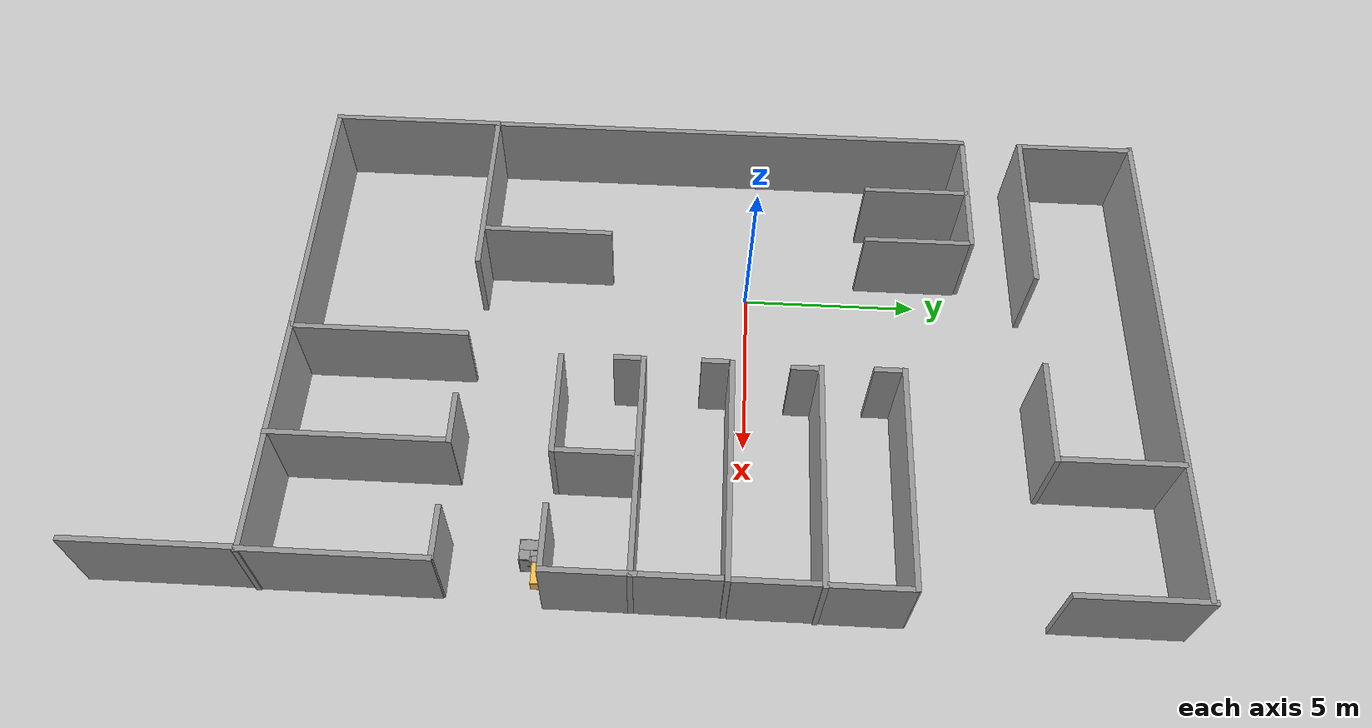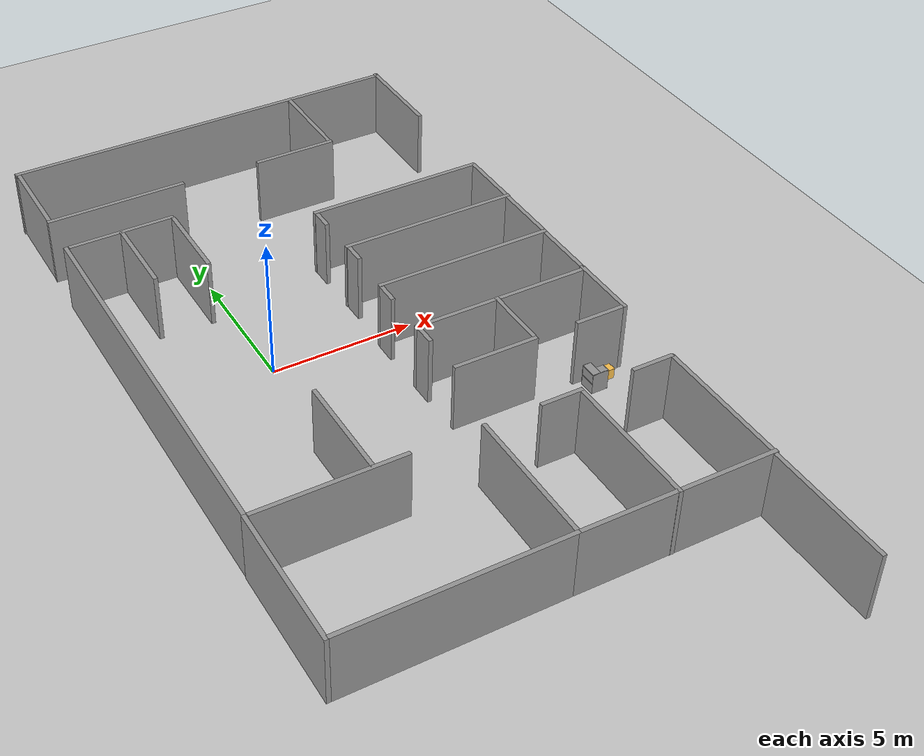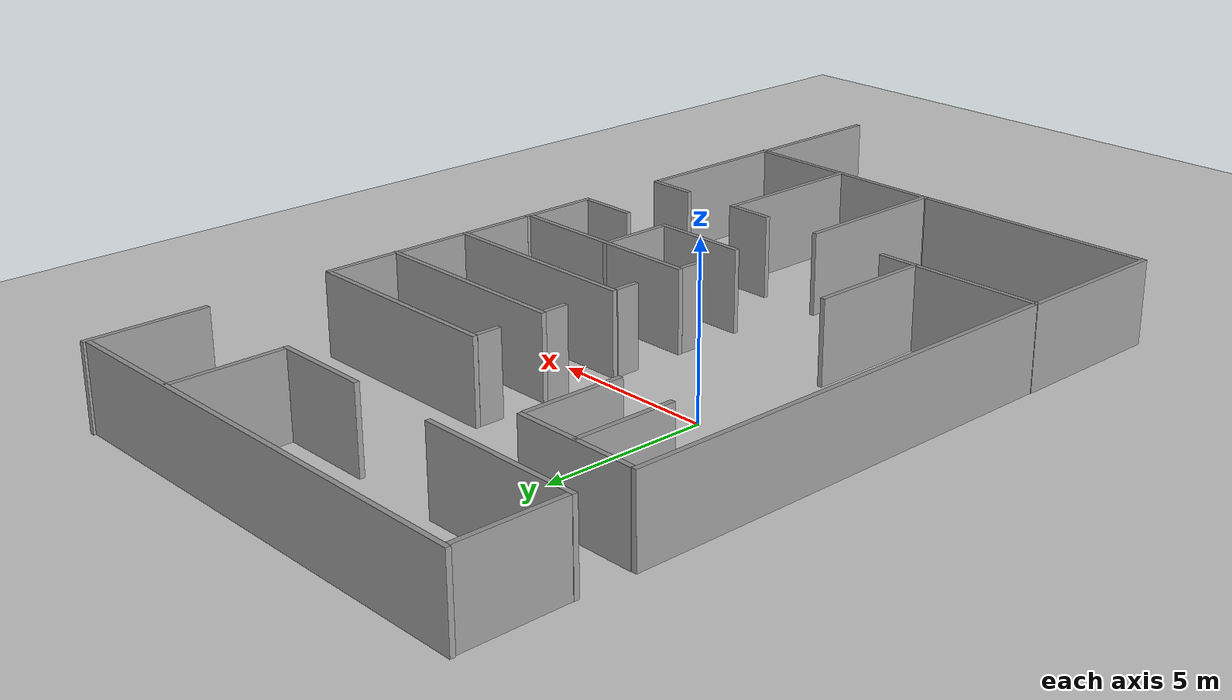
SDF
<sdf version="1.7">
 <world name="default">
  <light name="sun" type="directional">
   <pose>0 0 10 0 -0 0</pose>
   <diffuse>0.8 0.8 0.8 1</diffuse>
   <specular>0.2 0.2 0.2 1</specular>
   <attenuation>
    <range>1000</range>
    <constant>0.9</constant>
    <linear>0.01</linear>
    <quadratic>0.001</quadratic>
   </attenuation>
   <direction>-0.5 0.1 -0.9</direction>
   <spot><inner_angle>0</inner_angle><outer_angle>0</outer_angle><falloff>0</falloff></spot>
  </light>
  <model name="ground_plane">
   <static>1</static>
   <link name="link">
    <collision name="collision">
     <geometry><plane><normal>0 0 1</normal><size>100 100</size></plane></geometry>
     <surface><friction><ode><mu>100</mu><mu2>50</mu2></ode></friction></surface>
    </collision>
    <visual name="visual">
     <cast_shadows>0</cast_shadows>
     <geometry><plane><normal>0 0 1</normal><size>100 100</size></plane></geometry>
     <material>
      <script><uri>file://media/materials/scripts/gazebo.material</uri><name>Gazebo/Grey</name></script>
     </material>
    </visual>
   </link>
  </model>
  <gravity>0 0 -9.8</gravity>
  <magnetic_field>6e-06 2.3e-05 -4.2e-05</magnetic_field>
  <atmosphere type="adiabatic"/>
  <physics type="ode">
   <max_step_size>0.001</max_step_size>
   <real_time_factor>1</real_time_factor>
   <real_time_update_rate>1000</real_time_update_rate>
  </physics>
  <scene><ambient>0.4 0.4 0.4 1</ambient><background>0.7 0.7 0.7 1</background><shadows>1</shadows></scene>
  <audio><device>default</device></audio>
  <spherical_coordinates>
   <surface_model>EARTH_WGS84</surface_model>
   <latitude_deg>0</latitude_deg>
   <longitude_deg>0</longitude_deg>
   <elevation>0</elevation>
   <heading_deg>0</heading_deg>
  </spherical_coordinates>
  <model name="the_zd_map">
   <pose>3.39725 -2.90479 0 0 -0 0</pose>
   <link name="Wall_1">
    <collision name="Wall_1_Collision">
     <geometry><box><size>1.5 0.15 2.5</size></box></geometry>
     <pose>0 0 1.25 0 -0 0</pose>
    </collision>
    <visual name="Wall_1_Visual">
     <pose>0 0 1.25 0 -0 0</pose>
     <geometry><box><size>1.5 0.15 2.5</size></box></geometry>
     <material>
      <script><uri>file://media/materials/scripts/gazebo.material</uri><name>Gazebo/Grey</name></script>
      <ambient>1 1 1 1</ambient>
     </material>
     <meta><layer>0</layer></meta>
    </visual>
    <pose>5.71469 -4.92477 0 0 -0 3.14159</pose>
   </link>
   <link name="Wall_10">
    <collision name="Wall_10_Collision">
     <geometry><box><size>5 0.15 2.5</size></box></geometry>
     <pose>0 0 1.25 0 -0 0</pose>
    </collision>
    <visual name="Wall_10_Visual">
     <pose>0 0 1.25 0 -0 0</pose>
     <geometry><box><size>5 0.15 2.5</size></box></geometry>
     <material>
      <script><uri>file://media/materials/scripts/gazebo.material</uri><name>Gazebo/Grey</name></script>
      <ambient>1 1 1 1</ambient>
     </material>
     <meta><layer>0</layer></meta>
    </visual>
    <pose>6.42459 -7.39387 0 0 -0 -1.5708</pose>
   </link>
   <link name="Wall_103">
    <collision name="Wall_103_Collision">
     <geometry><box><size>6.4 0.15 2.5</size></box></geometry>
     <pose>0 0 1.25 0 -0 0</pose>
    </collision>
    <visual name="Wall_103_Visual">
     <pose>0 0 1.25 0 -0 0</pose>
     <geometry><box><size>6.4 0.15 2.5</size></box></geometry>
     <material>
      <script><uri>file://media/materials/scripts/gazebo.material</uri><name>Gazebo/Grey</name></script>
      <ambient>1 1 1 1</ambient>
     </material>
     <meta><layer>0</layer></meta>
    </visual>
    <pose>3.45118 7.09039 0 0 -0 3.14159</pose>
   </link>
   <link name="Wall_105">
    <collision name="Wall_105_Collision">
     <geometry><box><size>2.25 0.15 2.5</size></box></geometry>
     <pose>0 0 1.25 0 -0 0</pose>
    </collision>
    <visual name="Wall_105_Visual">
     <pose>0 0 1.25 0 -0 0</pose>
     <geometry><box><size>2.25 0.15 2.5</size></box></geometry>
     <material>
      <script><uri>file://media/materials/scripts/gazebo.material</uri><name>Gazebo/Grey</name></script>
      <ambient>1 1 1 1</ambient>
     </material>
     <meta><layer>0</layer></meta>
    </visual>
    <pose>6.58041 3.64322 0 0 -0 -1.5708</pose>
   </link>
   <link name="Wall_107">
    <collision name="Wall_107_Collision">
     <geometry><box><size>6.4 0.15 2.5</size></box></geometry>
     <pose>0 0 1.25 0 -0 0</pose>
    </collision>
    <visual name="Wall_107_Visual">
     <pose>0 0 1.25 0 -0 0</pose>
     <geometry><box><size>6.4 0.15 2.5</size></box></geometry>
     <material>
      <script><uri>file://media/materials/scripts/gazebo.material</uri><name>Gazebo/Grey</name></script>
      <ambient>1 1 1 1</ambient>
     </material>
     <meta><layer>0</layer></meta>
    </visual>
    <pose>3.48785 4.83544 0 0 -0 3.14159</pose>
   </link>
   <link name="Wall_109">
    <collision name="Wall_109_Collision">
     <geometry><box><size>0.75 0.15 2.5</size></box></geometry>
     <pose>0 0 1.25 0 -0 0</pose>
    </collision>
    <visual name="Wall_109_Visual">
     <pose>0 0 1.25 0 -0 0</pose>
     <geometry><box><size>0.75 0.15 2.5</size></box></geometry>
     <material>
      <script><uri>file://media/materials/scripts/gazebo.material</uri><name>Gazebo/Grey</name></script>
      <ambient>1 1 1 1</ambient>
     </material>
     <meta><layer>0</layer></meta>
    </visual>
    <pose>0.317098 -0.420477 0 0 -0 -1.5708</pose>
   </link>
   <link name="Wall_111">
    <collision name="Wall_111_Collision">
     <geometry><box><size>0.75 0.15 2.5</size></box></geometry>
     <pose>0 0 1.25 0 -0 0</pose>
    </collision>
    <visual name="Wall_111_Visual">
     <pose>0 0 1.25 0 -0 0</pose>
     <geometry><box><size>0.75 0.15 2.5</size></box></geometry>
     <material>
      <script><uri>file://media/materials/scripts/gazebo.material</uri><name>Gazebo/Grey</name></script>
      <ambient>1 1 1 1</ambient>
     </material>
     <meta><layer>0</layer></meta>
    </visual>
    <pose>0.302345 1.97283 0 0 -0 -1.5708</pose>
   </link>
   <link name="Wall_113">
    <collision name="Wall_113_Collision">
     <geometry><box><size>0.75 0.15 2.5</size></box></geometry>
     <pose>0 0 1.25 0 -0 0</pose>
    </collision>
    <visual name="Wall_113_Visual">
     <pose>0 0 1.25 0 -0 0</pose>
     <geometry><box><size>0.75 0.15 2.5</size></box></geometry>
     <material>
      <script><uri>file://media/materials/scripts/gazebo.material</uri><name>Gazebo/Grey</name></script>
      <ambient>1 1 1 1</ambient>
     </material>
     <meta><layer>0</layer></meta>
    </visual>
    <pose>0.387571 4.39285 0 0 -0 -1.5708</pose>
   </link>
   <link name="Wall_115">
    <collision name="Wall_115_Collision">
     <geometry><box><size>0.75 0.15 2.5</size></box></geometry>
     <pose>0 0 1.25 0 -0 0</pose>
    </collision>
    <visual name="Wall_115_Visual">
     <pose>0 0 1.25 0 -0 0</pose>
     <geometry><box><size>0.75 0.15 2.5</size></box></geometry>
     <material>
      <script><uri>file://media/materials/scripts/gazebo.material</uri><name>Gazebo/Grey</name></script>
      <ambient>1 1 1 1</ambient>
     </material>
     <meta><layer>0</layer></meta>
    </visual>
    <pose>0.332994 6.6324 0 0 -0 -1.5708</pose>
   </link>
   <link name="Wall_117">
    <collision name="Wall_117_Collision">
     <geometry><box><size>5 0.15 2.5</size></box></geometry>
     <pose>0 0 1.25 0 -0 0</pose>
    </collision>
    <visual name="Wall_117_Visual">
     <pose>0 0 1.25 0 -0 0</pose>
     <geometry><box><size>5 0.15 2.5</size></box></geometry>
     <material>
      <script><uri>file://media/materials/scripts/gazebo.material</uri><name>Gazebo/Grey</name></script>
      <ambient>1 1 1 1</ambient>
     </material>
     <meta><layer>0</layer></meta>
    </visual>
    <pose>-5.41371 10.9415 0 0 -0 3.14159</pose>
   </link>
   <link name="Wall_119">
    <collision name="Wall_119_Collision">
     <geometry><box><size>3.25 0.15 2.5</size></box></geometry>
     <pose>0 0 1.25 0 -0 0</pose>
    </collision>
    <visual name="Wall_119_Visual">
     <pose>0 0 1.25 0 -0 0</pose>
     <geometry><box><size>3.25 0.15 2.5</size></box></geometry>
     <material>
      <script><uri>file://media/materials/scripts/gazebo.material</uri><name>Gazebo/Grey</name></script>
      <ambient>1 1 1 1</ambient>
     </material>
     <meta><layer>0</layer></meta>
    </visual>
    <pose>-7.82477 12.629 0 0 -0 1.5708</pose>
   </link>
   <link name="Wall_12">
    <collision name="Wall_12_Collision">
     <geometry><box><size>1.5 0.15 2.5</size></box></geometry>
     <pose>0 0 1.25 0 -0 0</pose>
    </collision>
    <visual name="Wall_12_Visual">
     <pose>0 0 1.25 0 -0 0</pose>
     <geometry><box><size>1.5 0.15 2.5</size></box></geometry>
     <material>
      <script><uri>file://media/materials/scripts/gazebo.material</uri><name>Gazebo/Grey</name></script>
      <ambient>1 1 1 1</ambient>
     </material>
     <meta><layer>0</layer></meta>
    </visual>
    <pose>2.42757 -4.91599 0 0 -0 0</pose>
   </link>
   <link name="Wall_123">
    <collision name="Wall_123_Collision">
     <geometry><box><size>3.55 0.15 2.5</size></box></geometry>
     <pose>0 0 1.25 0 -0 0</pose>
    </collision>
    <visual name="Wall_123_Visual">
     <pose>0 0 1.25 0 -0 0</pose>
     <geometry><box><size>3.55 0.15 2.5</size></box></geometry>
     <material>
      <script><uri>file://media/materials/scripts/gazebo.material</uri><name>Gazebo/Grey</name></script>
      <ambient>1 1 1 1</ambient>
     </material>
     <meta><layer>0</layer></meta>
    </visual>
    <pose>6.53814 12.6014 0 0 -0 -1.5708</pose>
   </link>
   <link name="Wall_125">
    <collision name="Wall_125_Collision">
     <geometry><box><size>14.5 0.15 2.5</size></box></geometry>
     <pose>0 0 1.25 0 -0 0</pose>
    </collision>
    <visual name="Wall_125_Visual">
     <pose>0 0 1.25 0 -0 0</pose>
     <geometry><box><size>14.5 0.15 2.5</size></box></geometry>
     <material>
      <script><uri>file://media/materials/scripts/gazebo.material</uri><name>Gazebo/Grey</name></script>
      <ambient>1 1 1 1</ambient>
     </material>
     <meta><layer>0</layer></meta>
    </visual>
    <pose>-0.689455 14.2307 0 0 -0 0</pose>
   </link>
   <link name="Wall_127">
    <collision name="Wall_127_Collision">
     <geometry><box><size>3.4 0.15 2.5</size></box></geometry>
     <pose>0 0 1.25 0 -0 0</pose>
    </collision>
    <visual name="Wall_127_Visual">
     <pose>0 0 1.25 0 -0 0</pose>
     <geometry><box><size>3.4 0.15 2.5</size></box></geometry>
     <material>
      <script><uri>file://media/materials/scripts/gazebo.material</uri><name>Gazebo/Grey</name></script>
      <ambient>1 1 1 1</ambient>
     </material>
     <meta><layer>0</layer></meta>
    </visual>
    <pose>2.79509 12.5349 0 0 -0 -1.5708</pose>
   </link>
   <link name="Wall_129">
    <collision name="Wall_129_Collision">
     <geometry><box><size>3.75 0.15 2.5</size></box></geometry>
     <pose>0 0 1.25 0 -0 0</pose>
    </collision>
    <visual name="Wall_129_Visual">
     <pose>0 0 1.25 0 -0 0</pose>
     <geometry><box><size>3.75 0.15 2.5</size></box></geometry>
     <material>
      <script><uri>file://media/materials/scripts/gazebo.material</uri><name>Gazebo/Grey</name></script>
      <ambient>1 1 1 1</ambient>
     </material>
     <meta><layer>0</layer></meta>
    </visual>
    <pose>-5.90294 9.21314 0 0 -0 3.14159</pose>
   </link>
   <link name="Wall_131">
    <collision name="Wall_131_Collision">
     <geometry><box><size>4.5 0.15 2.5</size></box></geometry>
     <pose>0 0 1.25 0 -0 0</pose>
    </collision>
    <visual name="Wall_131_Visual">
     <pose>0 0 1.25 0 -0 0</pose>
     <geometry><box><size>4.5 0.15 2.5</size></box></geometry>
     <material>
      <script><uri>file://media/materials/scripts/gazebo.material</uri><name>Gazebo/Grey</name></script>
      <ambient>1 1 1 1</ambient>
     </material>
     <meta><layer>0</layer></meta>
    </visual>
    <pose>6.39386 -12.1264 0 0 -0 -1.5708</pose>
   </link>
   <link name="Wall_133">
    <collision name="Wall_133_Collision">
     <geometry><box><size>6.4 0.15 2.5</size></box></geometry>
     <pose>0 0 1.25 0 -0 0</pose>
    </collision>
    <visual name="Wall_133_Visual">
     <pose>0 0 1.25 0 -0 0</pose>
     <geometry><box><size>6.4 0.15 2.5</size></box></geometry>
     <material>
      <script><uri>file://media/materials/scripts/gazebo.material</uri><name>Gazebo/Grey</name></script>
      <ambient>1 1 1 1</ambient>
     </material>
     <meta><layer>0</layer></meta>
    </visual>
    <pose>3.44255 0.029352 0 0 -0 3.14159</pose>
   </link>
   <link name="Wall_135">
    <collision name="Wall_135_Collision">
     <geometry><box><size>2.25 0.15 2.5</size></box></geometry>
     <pose>0 0 1.25 0 -0 0</pose>
    </collision>
    <visual name="Wall_135_Visual">
     <pose>0 0 1.25 0 -0 0</pose>
     <geometry><box><size>2.25 0.15 2.5</size></box></geometry>
     <material>
      <script><uri>file://media/materials/scripts/gazebo.material</uri><name>Gazebo/Grey</name></script>
      <ambient>1 1 1 1</ambient>
     </material>
     <meta><layer>0</layer></meta>
    </visual>
    <pose>6.59698 5.99464 0 0 -0 -1.5708</pose>
   </link>
   <link name="Wall_137">
    <collision name="Wall_137_Collision">
     <geometry><box><size>3 0.15 2.5</size></box></geometry>
     <pose>0 0 1.25 0 -0 0</pose>
    </collision>
    <visual name="Wall_137_Visual">
     <pose>0 0 1.25 0 -0 0</pose>
     <geometry><box><size>3 0.15 2.5</size></box></geometry>
     <material>
      <script><uri>file://media/materials/scripts/gazebo.material</uri><name>Gazebo/Grey</name></script>
      <ambient>1 1 1 1</ambient>
     </material>
     <meta><layer>0</layer></meta>
    </visual>
    <pose>1.38514 10.8846 0 0 -0 3.14159</pose>
   </link>
   <link name="Wall_14">
    <collision name="Wall_14_Collision">
     <geometry><box><size>5 0.15 2.5</size></box></geometry>
     <pose>0 0 1.25 0 -0 0</pose>
    </collision>
    <visual name="Wall_14_Visual">
     <pose>0 0 1.25 0 -0 0</pose>
     <geometry><box><size>5 0.15 2.5</size></box></geometry>
     <material>
      <script><uri>file://media/materials/scripts/gazebo.material</uri><name>Gazebo/Grey</name></script>
      <ambient>1 1 1 1</ambient>
     </material>
     <meta><layer>0</layer></meta>
    </visual>
    <pose>3.10642 -7.34993 0 0 -0 -1.5708</pose>
   </link>
   <link name="Wall_25">
    <collision name="Wall_25_Collision">
     <geometry><box><size>5 0.15 2.5</size></box></geometry>
     <pose>0 0 1.25 0 -0 0</pose>
    </collision>
    <visual name="Wall_25_Visual">
     <pose>0 0 1.25 0 -0 0</pose>
     <geometry><box><size>5 0.15 2.5</size></box></geometry>
     <material>
      <script><uri>file://media/materials/scripts/gazebo.material</uri><name>Gazebo/Grey</name></script>
      <ambient>1 1 1 1</ambient>
     </material>
     <meta><layer>0</layer></meta>
    </visual>
    <pose>-0.229719 -7.31754 0 0 -0 1.5708</pose>
   </link>
   <link name="Wall_27">
    <collision name="Wall_27_Collision">
     <geometry><box><size>7.64821 0.15 2.5</size></box></geometry>
     <pose>0 0 1.25 0 -0 0</pose>
    </collision>
    <visual name="Wall_27_Visual">
     <pose>0 0 1.25 0 -0 0</pose>
     <geometry><box><size>7.64821 0.15 2.5</size></box></geometry>
     <material>
      <script><uri>file://media/materials/scripts/gazebo.material</uri><name>Gazebo/Grey</name></script>
      <ambient>1 1 1 1</ambient>
     </material>
     <meta><layer>0</layer></meta>
    </visual>
    <pose>-4.014 -9.74254 0 0 -0 3.14159</pose>
   </link>
   <link name="Wall_29">
    <collision name="Wall_29_Collision">
     <geometry><box><size>6.8748 0.15 2.5</size></box></geometry>
     <pose>0 0 1.25 0 -0 0</pose>
    </collision>
    <visual name="Wall_29_Visual">
     <pose>0 0 1.25 0 -0 0</pose>
     <geometry><box><size>6.8748 0.15 2.5</size></box></geometry>
     <material>
      <script><uri>file://media/materials/scripts/gazebo.material</uri><name>Gazebo/Grey</name></script>
      <ambient>1 1 1 1</ambient>
     </material>
     <meta><layer>0</layer></meta>
    </visual>
    <pose>3.09744 -9.76312 0 0 -0 3.13547</pose>
   </link>
   <link name="Wall_38">
    <collision name="Wall_38_Collision">
     <geometry><box><size>5 0.15 2.5</size></box></geometry>
     <pose>0 0 1.25 0 -0 0</pose>
    </collision>
    <visual name="Wall_38_Visual">
     <pose>0 0 1.25 0 -0 0</pose>
     <geometry><box><size>5 0.15 2.5</size></box></geometry>
     <material>
      <script><uri>file://media/materials/scripts/gazebo.material</uri><name>Gazebo/Grey</name></script>
      <ambient>1 1 1 1</ambient>
     </material>
     <meta><layer>0</layer></meta>
    </visual>
    <pose>-7.89357 -7.31783 0 0 -0 1.5708</pose>
   </link>
   <link name="Wall_40">
    <collision name="Wall_40_Collision">
     <geometry><box><size>5.25 0.15 2.5</size></box></geometry>
     <pose>0 0 1.25 0 -0 0</pose>
    </collision>
    <visual name="Wall_40_Visual">
     <pose>0 0 1.25 0 -0 0</pose>
     <geometry><box><size>5.25 0.15 2.5</size></box></geometry>
     <material>
      <script><uri>file://media/materials/scripts/gazebo.material</uri><name>Gazebo/Grey</name></script>
      <ambient>1 1 1 1</ambient>
     </material>
     <meta><layer>0</layer></meta>
    </visual>
    <pose>-5.29705 -4.86227 0 0 -0 0</pose>
   </link>
   <link name="Wall_44">
    <collision name="Wall_44_Collision">
     <geometry><box><size>14.25 0.15 2.5</size></box></geometry>
     <pose>0 0 1.25 0 -0 0</pose>
    </collision>
    <visual name="Wall_44_Visual">
     <pose>0 0 1.25 0 -0 0</pose>
     <geometry><box><size>14.25 0.15 2.5</size></box></geometry>
     <material>
      <script><uri>file://media/materials/scripts/gazebo.material</uri><name>Gazebo/Grey</name></script>
      <ambient>1 1 1 1</ambient>
     </material>
     <meta><layer>0</layer></meta>
    </visual>
    <pose>-7.87482 2.14768 0 0 -0 1.5708</pose>
   </link>
   <link name="Wall_48">
    <collision name="Wall_48_Collision">
     <geometry><box><size>3.75 0.15 2.5</size></box></geometry>
     <pose>0 0 1.25 0 -0 0</pose>
    </collision>
    <visual name="Wall_48_Visual">
     <pose>0 0 1.25 0 -0 0</pose>
     <geometry><box><size>3.75 0.15 2.5</size></box></geometry>
     <material>
      <script><uri>file://media/materials/scripts/gazebo.material</uri><name>Gazebo/Grey</name></script>
      <ambient>1 1 1 1</ambient>
     </material>
     <meta><layer>0</layer></meta>
    </visual>
    <pose>-3.87769 -2.9843 0 0 -0 1.5708</pose>
   </link>
   <link name="Wall_50">
    <collision name="Wall_50_Collision">
     <geometry><box><size>3 0.15 2.5</size></box></geometry>
     <pose>0 0 1.25 0 -0 0</pose>
    </collision>
    <visual name="Wall_50_Visual">
     <pose>0 0 1.25 0 -0 0</pose>
     <geometry><box><size>3 0.15 2.5</size></box></geometry>
     <material>
      <script><uri>file://media/materials/scripts/gazebo.material</uri><name>Gazebo/Grey</name></script>
      <ambient>1 1 1 1</ambient>
     </material>
     <meta><layer>0</layer></meta>
    </visual>
    <pose>-5.91001 7.72844 0 0 -0 -1.5708</pose>
   </link>
   <link name="Wall_54">
    <collision name="Wall_54_Collision">
     <geometry><box><size>3 0.15 2.5</size></box></geometry>
     <pose>0 0 1.25 0 -0 0</pose>
    </collision>
    <visual name="Wall_54_Visual">
     <pose>0 0 1.25 0 -0 0</pose>
     <geometry><box><size>3 0.15 2.5</size></box></geometry>
     <material>
      <script><uri>file://media/materials/scripts/gazebo.material</uri><name>Gazebo/Grey</name></script>
      <ambient>1 1 1 1</ambient>
     </material>
     <meta><layer>0</layer></meta>
    </visual>
    <pose>-4.06803 7.6563 0 0 -0 -1.5708</pose>
   </link>
   <link name="Wall_67">
    <collision name="Wall_67_Collision">
     <geometry><box><size>1.75 0.15 2.5</size></box></geometry>
     <pose>0 0 1.25 0 -0 0</pose>
    </collision>
    <visual name="Wall_67_Visual">
     <pose>0 0 1.25 0 -0 0</pose>
     <geometry><box><size>1.75 0.15 2.5</size></box></geometry>
     <material>
      <script><uri>file://media/materials/scripts/gazebo.material</uri><name>Gazebo/Grey</name></script>
      <ambient>1 1 1 1</ambient>
     </material>
     <meta><layer>0</layer></meta>
    </visual>
    <pose>5.63694 -2.21184 0 0 -0 3.14159</pose>
   </link>
   <link name="Wall_74">
    <collision name="Wall_74_Collision">
     <geometry><box><size>2.5 0.15 2.5</size></box></geometry>
     <pose>0 0 1.25 0 -0 0</pose>
    </collision>
    <visual name="Wall_74_Visual">
     <pose>0 0 1.25 0 -0 0</pose>
     <geometry><box><size>2.5 0.15 2.5</size></box></geometry>
     <material>
      <script><uri>file://media/materials/scripts/gazebo.material</uri><name>Gazebo/Grey</name></script>
      <ambient>1 1 1 1</ambient>
     </material>
     <meta><layer>0</layer></meta>
    </visual>
    <pose>6.56411 -1.03766 0 0 -0 1.5708</pose>
   </link>
   <link name="Wall_86">
    <collision name="Wall_86_Collision">
     <geometry><box><size>3 0.15 2.5</size></box></geometry>
     <pose>0 0 1.25 0 -0 0</pose>
    </collision>
    <visual name="Wall_86_Visual">
     <pose>0 0 1.25 0 -0 0</pose>
     <geometry><box><size>3 0.15 2.5</size></box></geometry>
     <material>
      <script><uri>file://media/materials/scripts/gazebo.material</uri><name>Gazebo/Grey</name></script>
      <ambient>1 1 1 1</ambient>
     </material>
     <meta><layer>0</layer></meta>
    </visual>
    <pose>1.79974 -2.21407 0 0 -0 3.14159</pose>
   </link>
   <link name="Wall_88">
    <collision name="Wall_88_Collision">
     <geometry><box><size>2.25 0.15 2.5</size></box></geometry>
     <pose>0 0 1.25 0 -0 0</pose>
    </collision>
    <visual name="Wall_88_Visual">
     <pose>0 0 1.25 0 -0 0</pose>
     <geometry><box><size>2.25 0.15 2.5</size></box></geometry>
     <material>
      <script><uri>file://media/materials/scripts/gazebo.material</uri><name>Gazebo/Grey</name></script>
      <ambient>1 1 1 1</ambient>
     </material>
     <meta><layer>0</layer></meta>
    </visual>
    <pose>3.23093 -1.0166 0 0 -0 -1.5708</pose>
   </link>
   <link name="Wall_97">
    <collision name="Wall_97_Collision">
     <geometry><box><size>2.25 0.15 2.5</size></box></geometry>
     <pose>0 0 1.25 0 -0 0</pose>
    </collision>
    <visual name="Wall_97_Visual">
     <pose>0 0 1.25 0 -0 0</pose>
     <geometry><box><size>2.25 0.15 2.5</size></box></geometry>
     <material>
      <script><uri>file://media/materials/scripts/gazebo.material</uri><name>Gazebo/Grey</name></script>
      <ambient>1 1 1 1</ambient>
     </material>
     <meta><layer>0</layer></meta>
    </visual>
    <pose>6.56525 1.22518 0 0 -0 1.5708</pose>
   </link>
   <link name="Wall_99">
    <collision name="Wall_99_Collision">
     <geometry><box><size>6.4 0.15 2.5</size></box></geometry>
     <pose>0 0 1.25 0 -0 0</pose>
    </collision>
    <visual name="Wall_99_Visual">
     <pose>0 0 1.25 0 -0 0</pose>
     <geometry><box><size>6.4 0.15 2.5</size></box></geometry>
     <material>
      <script><uri>file://media/materials/scripts/gazebo.material</uri><name>Gazebo/Grey</name></script>
      <ambient>1 1 1 1</ambient>
     </material>
     <meta><layer>0</layer></meta>
    </visual>
    <pose>3.44288 2.43712 0 0 -0 3.14159</pose>
   </link>
   <static>1</static>
  </model>
  <model name="Wall_Cabinet_Coin_24x30W">
   <link name="Wall_10">
    <pose>0.286 -0.148 0.384 0 -0 0</pose>
    <inertial>
     <mass>2.1259</mass>
     <inertia><ixx>0.0158</ixx><iyy>0.1202</iyy><izz>0.1046</izz><ixy>0</ixy><ixz>0</ixz><iyz>0</iyz></inertia>
    </inertial>
    <collision name="Wall_10_Collision"><geometry><box><size>0.02 0.296 0.768</size></box></geometry></collision>
    <visual name="Wall_10_Visual">
     <geometry><box><size>0.02 0.296 0.768</size></box></geometry>
     <material>
      <script><uri>file://media/materials/scripts/gazebo.material</uri><name>Gazebo/Grey</name></script>
      <ambient>1 1 1 1</ambient>
     </material>
    </visual>
   </link>
   <joint name="10_16" type="fixed">
    <pose>0 0 -0.374 0 -0 0</pose>
    <parent>Wall_16</parent>
    <child>Wall_10</child>
    <axis><xyz>1 0 0</xyz><limit><lower>-1e+16</lower><upper>1e+16</upper></limit></axis>
   </joint>
   <joint name="10_14" type="fixed">
    <parent>Wall_14</parent>
    <child>Wall_10</child>
    <axis><xyz>1 0 0</xyz><limit><lower>-1e+16</lower><upper>1e+16</upper></limit></axis>
   </joint>
   <joint name="10_12" type="fixed">
    <pose>0 0 0.374 0 -0 0</pose>
    <parent>Wall_12</parent>
    <child>Wall_10</child>
    <axis><xyz>1 0 0</xyz><limit><lower>-1e+16</lower><upper>1e+16</upper></limit></axis>
   </joint>
   <joint name="10_29" type="fixed">
    <pose>0 -0.148 0 0 -0 0</pose>
    <parent>Wall_29</parent>
    <child>Wall_10</child>
    <axis><xyz>1 0 0</xyz><limit><lower>-1e+16</lower><upper>1e+16</upper></limit></axis>
   </joint>
   <link name="Wall_12">
    <pose>0.148 -0.148 0.758 0 -0 0</pose>
    <inertial>
     <mass>0.8802</mass>
     <inertia><ixx>0.0065</ixx><iyy>0.0139</iyy><izz>0.0074</izz><ixy>0</ixy><ixz>0</ixz><iyz>0</iyz></inertia>
    </inertial>
    <collision name="Wall_12_Collision"><geometry><box><size>0.296 0.296 0.02</size></box></geometry></collision>
    <visual name="Wall_12_Visual">
     <geometry><box><size>0.296 0.296 0.02</size></box></geometry>
     <material>
      <script><uri>file://media/materials/scripts/gazebo.material</uri><name>Gazebo/Grey</name></script>
      <ambient>1 1 1 1</ambient>
     </material>
    </visual>
   </link>
   <joint name="12_29" type="fixed">
    <pose>0 -0.148 0 0 -0 0</pose>
    <parent>Wall_29</parent>
    <child>Wall_12</child>
    <axis><xyz>0 0 1</xyz><limit><lower>-1e+16</lower><upper>1e+16</upper></limit></axis>
   </joint>
   <link name="Wall_14">
    <pose>0.148 -0.148 0.384 0 -0 0</pose>
    <inertial>
     <mass>0.8802</mass>
     <inertia><ixx>0.0065</ixx><iyy>0.0139</iyy><izz>0.0074</izz><ixy>0</ixy><ixz>0</ixz><iyz>0</iyz></inertia>
    </inertial>
    <collision name="Wall_14_Collision"><geometry><box><size>0.296 0.296 0.02</size></box></geometry></collision>
    <visual name="Wall_14_Visual">
     <geometry><box><size>0.296 0.296 0.02</size></box></geometry>
     <material>
      <script><uri>file://media/materials/scripts/gazebo.material</uri><name>Gazebo/Grey</name></script>
      <ambient>1 1 1 1</ambient>
     </material>
    </visual>
   </link>
   <joint name="14_29" type="fixed">
    <pose>0 -0.148 0 0 -0 0</pose>
    <parent>Wall_29</parent>
    <child>Wall_14</child>
    <axis><xyz>0 1 0</xyz><limit><lower>-1e+16</lower><upper>1e+16</upper></limit></axis>
   </joint>
   <link name="Wall_16">
    <pose>0.148 -0.148 0.01 0 -0 0</pose>
    <inertial>
     <mass>0.8802</mass>
     <inertia><ixx>0.0065</ixx><iyy>0.0139</iyy><izz>0.0074</izz><ixy>0</ixy><ixz>0</ixz><iyz>0</iyz></inertia>
    </inertial>
    <collision name="Wall_16_Collision"><geometry><box><size>0.296 0.296 0.02</size></box></geometry></collision>
    <visual name="Wall_16_Visual">
     <geometry><box><size>0.296 0.296 0.02</size></box></geometry>
     <material>
      <script><uri>file://media/materials/scripts/gazebo.material</uri><name>Gazebo/Grey</name></script>
      <ambient>1 1 1 1</ambient>
     </material>
    </visual>
   </link>
   <joint name="16_29" type="fixed">
    <pose>0 -0.148 0 0 -0 0</pose>
    <parent>Wall_29</parent>
    <child>Wall_16</child>
    <axis><xyz>0 1 0</xyz><limit><lower>-1e+16</lower><upper>1e+16</upper></limit></axis>
   </joint>
   <link name="Wall_18">
    <pose>-0.148 0 0.01 0 -0 0</pose>
    <inertial>
     <mass>1.6525</mass>
     <inertia><ixx>0.0491</ixx><iyy>0.0613</iyy><izz>0.0123</izz><ixy>0</ixy><ixz>0</ixz><iyz>0</iyz></inertia>
    </inertial>
    <collision name="Wall_18_Collision"><geometry><box><size>0.296 0.592 0.02</size></box></geometry></collision>
    <visual name="Wall_18_Visual">
     <geometry><box><size>0.296 0.592 0.02</size></box></geometry>
     <material>
      <script><uri>file://media/materials/scripts/gazebo.material</uri><name>Gazebo/Grey</name></script>
      <ambient>1 1 1 1</ambient>
     </material>
    </visual>
   </link>
   <joint name="18_16" type="fixed">
    <pose>0.148 -0.148 0 0 -0 0</pose>
    <parent>Wall_16</parent>
    <child>Wall_18</child>
    <axis><xyz>1 0 0</xyz><limit><lower>-1e+16</lower><upper>1e+16</upper></limit></axis>
   </joint>
   <joint name="18_29" type="fixed">
    <pose>0 -0.296 0 0 -0 0</pose>
    <parent>Wall_29</parent>
    <child>Wall_18</child>
    <axis><xyz>0 1 0</xyz><limit><lower>-1e+16</lower><upper>1e+16</upper></limit></axis>
   </joint>
   <joint name="18_27" type="fixed">
    <pose>-0.148 0 0 0 -0 0</pose>
    <parent>Wall_27</parent>
    <child>Wall_18</child>
    <axis><xyz>1 0 0</xyz><limit><lower>-1e+16</lower><upper>1e+16</upper></limit></axis>
   </joint>
   <joint name="18_30" type="fixed">
    <pose>0 0.296 0 0 -0 0</pose>
    <parent>Wall_30</parent>
    <child>Wall_18</child>
    <axis><xyz>0 1 0</xyz><limit><lower>-1e+16</lower><upper>1e+16</upper></limit></axis>
   </joint>
   <link name="Wall_20">
    <pose>-0.148 0 0.384 0 -0 0</pose>
    <inertial>
     <mass>1.6525</mass>
     <inertia><ixx>0.0491</ixx><iyy>0.0613</iyy><izz>0.0123</izz><ixy>0</ixy><ixz>0</ixz><iyz>0</iyz></inertia>
    </inertial>
    <collision name="Wall_20_Collision"><geometry><box><size>0.296 0.592 0.02</size></box></geometry></collision>
    <visual name="Wall_20_Visual">
     <geometry><box><size>0.296 0.592 0.02</size></box></geometry>
     <material>
      <script><uri>file://media/materials/scripts/gazebo.material</uri><name>Gazebo/Grey</name></script>
      <ambient>1 1 1 1</ambient>
     </material>
    </visual>
   </link>
   <joint name="20_14" type="fixed">
    <pose>0.148 -0.148 0 0 -0 0</pose>
    <parent>Wall_14</parent>
    <child>Wall_20</child>
    <axis><xyz>1 0 0</xyz><limit><lower>-1e+16</lower><upper>1e+16</upper></limit></axis>
   </joint>
   <joint name="20_29" type="fixed">
    <pose>0 -0.296 0 0 -0 0</pose>
    <parent>Wall_29</parent>
    <child>Wall_20</child>
    <axis><xyz>0 1 0</xyz><limit><lower>-1e+16</lower><upper>1e+16</upper></limit></axis>
   </joint>
   <joint name="20_27" type="fixed">
    <pose>-0.148 0 0 0 -0 0</pose>
    <parent>Wall_27</parent>
    <child>Wall_20</child>
    <axis><xyz>1 0 0</xyz><limit><lower>-1e+16</lower><upper>1e+16</upper></limit></axis>
   </joint>
   <joint name="20_30" type="fixed">
    <pose>0 0.296 0 0 -0 0</pose>
    <parent>Wall_30</parent>
    <child>Wall_20</child>
    <axis><xyz>0 1 0</xyz><limit><lower>-1e+16</lower><upper>1e+16</upper></limit></axis>
   </joint>
   <link name="Wall_22">
    <pose>-0.148 0 0.758 0 -0 0</pose>
    <inertial>
     <mass>1.6525</mass>
     <inertia><ixx>0.0491</ixx><iyy>0.0613</iyy><izz>0.0123</izz><ixy>0</ixy><ixz>0</ixz><iyz>0</iyz></inertia>
    </inertial>
    <collision name="Wall_22_Collision"><geometry><box><size>0.296 0.592 0.02</size></box></geometry></collision>
    <visual name="Wall_22_Visual">
     <geometry><box><size>0.296 0.592 0.02</size></box></geometry>
     <material>
      <script><uri>file://media/materials/scripts/gazebo.material</uri><name>Gazebo/Grey</name></script>
      <ambient>1 1 1 1</ambient>
     </material>
    </visual>
   </link>
   <joint name="22_12" type="fixed">
    <pose>0.148 -0.148 0 0 -0 0</pose>
    <parent>Wall_12</parent>
    <child>Wall_22</child>
    <axis><xyz>1 0 0</xyz><limit><lower>-1e+16</lower><upper>1e+16</upper></limit></axis>
   </joint>
   <joint name="22_29" type="fixed">
    <pose>0 -0.296 0 0 -0 0</pose>
    <parent>Wall_29</parent>
    <child>Wall_22</child>
    <axis><xyz>0 1 0</xyz><limit><lower>-1e+16</lower><upper>1e+16</upper></limit></axis>
   </joint>
   <joint name="22_27" type="fixed">
    <pose>-0.148 0 0 0 -0 0</pose>
    <parent>Wall_27</parent>
    <child>Wall_22</child>
    <axis><xyz>1 0 0</xyz><limit><lower>-1e+16</lower><upper>1e+16</upper></limit></axis>
   </joint>
   <joint name="22_30" type="fixed">
    <pose>0 0.296 0 0 -0 0</pose>
    <parent>Wall_30</parent>
    <child>Wall_22</child>
    <axis><xyz>0 1 0</xyz><limit><lower>-1e+16</lower><upper>1e+16</upper></limit></axis>
   </joint>
   <link name="Wall_27">
    <pose>-0.286 0 0.384 0 -0 0</pose>
    <inertial>
     <mass>4.2589</mass>
     <inertia><ixx>0.1266</ixx><iyy>0.3358</iyy><izz>0.2095</izz><ixy>0</ixy><ixz>0</ixz><iyz>0</iyz></inertia>
    </inertial>
    <collision name="Wall_27_Collision"><geometry><box><size>0.02 0.592 0.768</size></box></geometry></collision>
    <visual name="Wall_27_Visual">
     <geometry><box><size>0.02 0.592 0.768</size></box></geometry>
     <material>
      <script><uri>file://media/materials/scripts/gazebo.material</uri><name>Gazebo/Grey</name></script>
      <ambient>1 1 1 1</ambient>
     </material>
    </visual>
   </link>
   <joint name="27_30" type="fixed">
    <pose>0 0.296 0 0 -0 0</pose>
    <parent>Wall_30</parent>
    <child>Wall_27</child>
    <axis><xyz>0 1 0</xyz><limit><lower>-1e+16</lower><upper>1e+16</upper></limit></axis>
   </joint>
   <link name="Wall_29">
    <pose>0 -0.286 0.384 0 -0 0</pose>
    <inertial>
     <mass>4.3176</mass>
     <inertia><ixx>0.134</ixx><iyy>0.2091</iyy><izz>0.3428</izz><ixy>0</ixy><ixz>0</ixz><iyz>0</iyz></inertia>
    </inertial>
    <collision name="Wall_29_Collision"><geometry><box><size>0.592 0.02 0.768</size></box></geometry></collision>
    <visual name="Wall_29_Visual">
     <geometry><box><size>0.592 0.02 0.768</size></box></geometry>
     <material>
      <script><uri>file://media/materials/scripts/gazebo.material</uri><name>Gazebo/Grey</name></script>
      <ambient>1 1 1 1</ambient>
     </material>
    </visual>
   </link>
   <link name="Wall_30">
    <pose>-0.148 0.286 0.384 0 -0 0</pose>
    <inertial>
     <mass>2.1093</mass>
     <inertia><ixx>0.1021</ixx><iyy>0.0157</iyy><izz>0.1177</izz><ixy>0</ixy><ixz>0</ixz><iyz>0</iyz></inertia>
    </inertial>
    <collision name="Wall_30_Collision"><geometry><box><size>0.296 0.02 0.768</size></box></geometry></collision>
    <visual name="Wall_30_Visual">
     <geometry><box><size>0.296 0.02 0.768</size></box></geometry>
     <material>
      <script><uri>file://media/materials/scripts/gazebo.material</uri><name>Gazebo/Grey</name></script>
      <ambient>1 1 1 1</ambient>
     </material>
    </visual>
   </link>
   <static>1</static>
   <pose>8.73072 -5.57667 0 0 -0 0</pose>
  </model>
  <model name="Wall_Cabinet_24x15M">
   <link name="Wall_41">
    <pose>0 0 0.01 0 -0 0</pose>
    <inertial>
     <mass>1.4983</mass>
     <inertia><ixx>0.011</ixx><iyy>0.0571</iyy><izz>0.0462</izz><ixy>0</ixy><ixz>0</ixz><iyz>0</iyz></inertia>
    </inertial>
    <collision name="Wall_41_Collision"><geometry><box><size>0.608 0.296 0.02</size></box></geometry></collision>
    <visual name="Wall_41_Visual">
     <geometry><box><size>0.608 0.296 0.02</size></box></geometry>
     <material>
      <script><uri>file://media/materials/scripts/gazebo.material</uri><name>Gazebo/Grey</name></script>
      <ambient>1 0.764706 0.305882 1</ambient>
     </material>
    </visual>
    <pose>0.000184 0.181953 0 0 -0 0</pose>
   </link>
   <joint name="41_43" type="fixed">
    <pose>-0.304 0 0 0 -0 0</pose>
    <parent>Wall_43</parent>
    <child>Wall_41</child>
    <axis><xyz>0 0 1</xyz><limit><lower>-1e+16</lower><upper>1e+16</upper></limit></axis>
   </joint>
   <joint name="41_45" type="fixed">
    <pose>0.304 0 0 0 -0 0</pose>
    <parent>Wall_45</parent>
    <child>Wall_41</child>
    <axis><xyz>0 0 1</xyz><limit><lower>-1e+16</lower><upper>1e+16</upper></limit></axis>
   </joint>
   <joint name="41_49" type="fixed">
    <pose>0 -0.148 0 0 -0 0</pose>
    <parent>Wall_49</parent>
    <child>Wall_41</child>
    <axis><xyz>0 0 1</xyz><limit><lower>-1e+16</lower><upper>1e+16</upper></limit></axis>
   </joint>
   <link name="Wall_43">
    <pose>-0.294 0 0.192 0 -0 0</pose>
    <inertial>
     <mass>0.9463</mass>
     <inertia><ixx>0.0069</ixx><iyy>0.0185</iyy><izz>0.0117</izz><ixy>0</ixy><ixz>0</ixz><iyz>0</iyz></inertia>
    </inertial>
    <collision name="Wall_43_Collision"><geometry><box><size>0.02 0.296 0.384</size></box></geometry></collision>
    <visual name="Wall_43_Visual">
     <geometry><box><size>0.02 0.296 0.384</size></box></geometry>
     <material>
      <script><uri>file://media/materials/scripts/gazebo.material</uri><name>Gazebo/Grey</name></script>
      <ambient>1 0.764706 0.305882 1</ambient>
     </material>
    </visual>
   </link>
   <link name="Wall_45">
    <pose>0.294 0 0.192 0 -0 0</pose>
    <inertial>
     <mass>0.9463</mass>
     <inertia><ixx>0.0069</ixx><iyy>0.0185</iyy><izz>0.0117</izz><ixy>0</ixy><ixz>0</ixz><iyz>0</iyz></inertia>
    </inertial>
    <collision name="Wall_45_Collision"><geometry><box><size>0.02 0.296 0.384</size></box></geometry></collision>
    <visual name="Wall_45_Visual">
     <geometry><box><size>0.02 0.296 0.384</size></box></geometry>
     <material>
      <script><uri>file://media/materials/scripts/gazebo.material</uri><name>Gazebo/Grey</name></script>
      <ambient>1 0.764706 0.305882 1</ambient>
     </material>
    </visual>
   </link>
   <link name="Wall_47">
    <pose>0 0 0.374 0 -0 0</pose>
    <inertial>
     <mass>1.4983</mass>
     <inertia><ixx>0.011</ixx><iyy>0.0571</iyy><izz>0.0462</izz><ixy>0</ixy><ixz>0</ixz><iyz>0</iyz></inertia>
    </inertial>
    <collision name="Wall_47_Collision"><geometry><box><size>0.608 0.296 0.02</size></box></geometry></collision>
    <visual name="Wall_47_Visual">
     <geometry><box><size>0.608 0.296 0.02</size></box></geometry>
     <material>
      <script><uri>file://media/materials/scripts/gazebo.material</uri><name>Gazebo/Grey</name></script>
      <ambient>1 0.764706 0.305882 1</ambient>
     </material>
    </visual>
   </link>
   <joint name="47_43" type="fixed">
    <pose>-0.304 0 0 0 -0 0</pose>
    <parent>Wall_43</parent>
    <child>Wall_47</child>
    <axis><xyz>0 0 1</xyz><limit><lower>-1e+16</lower><upper>1e+16</upper></limit></axis>
   </joint>
   <joint name="47_45" type="fixed">
    <pose>0.304 0 0 0 -0 0</pose>
    <parent>Wall_45</parent>
    <child>Wall_47</child>
    <axis><xyz>0 0 1</xyz><limit><lower>-1e+16</lower><upper>1e+16</upper></limit></axis>
   </joint>
   <joint name="47_49" type="fixed">
    <pose>0 -0.148 0 0 -0 0</pose>
    <parent>Wall_49</parent>
    <child>Wall_47</child>
    <axis><xyz>0 0 1</xyz><limit><lower>-1e+16</lower><upper>1e+16</upper></limit></axis>
   </joint>
   <link name="Wall_49">
    <pose>0 -0.138 0.19 0 -0 0</pose>
    <inertial>
     <mass>1.9108</mass>
     <inertia><ixx>0.0231</ixx><iyy>0.0582</iyy><izz>0.0811</izz><ixy>0</ixy><ixz>0</ixz><iyz>0</iyz></inertia>
    </inertial>
    <collision name="Wall_49_Collision"><geometry><box><size>0.604 0.02 0.38</size></box></geometry></collision>
    <visual name="Wall_49_Visual">
     <geometry><box><size>0.604 0.02 0.38</size></box></geometry>
     <material>
      <script><uri>file://media/materials/scripts/gazebo.material</uri><name>Gazebo/Grey</name></script>
      <ambient>1 0.764706 0.305882 1</ambient>
     </material>
    </visual>
   </link>
   <joint name="49_43" type="fixed">
    <pose>-0.302 0 0 0 -0 0</pose>
    <parent>Wall_41</parent>
    <child>Wall_49</child>
    <axis><xyz>0 1 0</xyz><limit><lower>-1e+16</lower><upper>1e+16</upper></limit></axis>
   </joint>
   <joint name="49_45" type="fixed">
    <pose>0.302 0 0 0 -0 0</pose>
    <parent>Wall_45</parent>
    <child>Wall_49</child>
    <axis><xyz>0 1 0</xyz><limit><lower>-1e+16</lower><upper>1e+16</upper></limit></axis>
   </joint>
   <static>1</static>
   <pose>9.21217 -5.40239 0 0 -0 0</pose>
  </model>
 </world>
</sdf>
